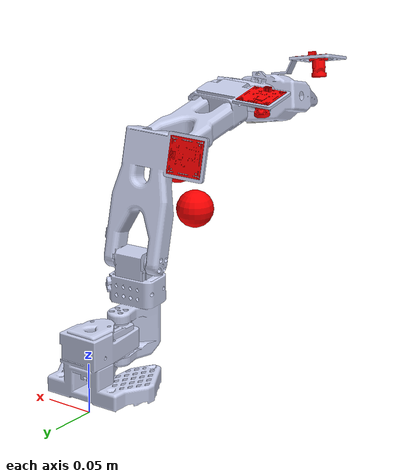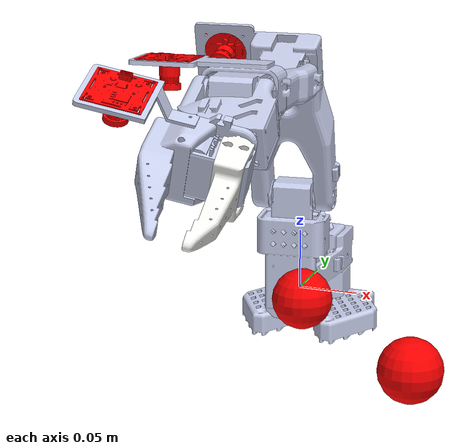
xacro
<?xml version="1.0" encoding="utf-8"?>

<robot xmlns:xacro="http://www.ros.org/wiki/xacro" name="digital_twin">

  <xacro:include filename="$(find digital_twin)/urdf/ros_control.urdf.xacro" />
  <xacro:property name="focal_length" value="1.047" />

  <link name="world"/>

  <xacro:include filename="$(find digital_twin)/urdf/random_sphere_1.urdf.xacro" />

  <link name="base_link">
    <inertial>
      <origin
        xyz="0.0289665748459923 -0.0563386381862514 0.0257898952415849"
        rpy="0 0 0" />
      <mass
        value="0.182638453025953" />
      <inertia
        ixx="0.000138502730797721"
        ixy="5.13155858445536E-07"
        ixz="-2.43327941158306E-09"
        iyy="0.000149708916054179"
        iyz="-2.12768663741834E-05"
        izz="0.00017574420518952" />
    </inertial>
    <visual>
      <origin
        xyz="0 0 0"
        rpy="0 0 0" />
      <geometry>
        <mesh
          filename="package://digital_twin/meshes_2/base.STL" />
      </geometry>
      <material
        name="">
        <color
          rgba="0.792156862745098 0.819607843137255 0.933333333333333 1" />
      </material>
    </visual>
    <collision>
      <origin
        xyz="0 0 0"
        rpy="0 0 0" />
      <geometry>
        <mesh
          filename="package://digital_twin/meshes_2/base.STL" />
      </geometry>
    </collision>
  </link>
  <link
    name="rotator">
    <inertial>
      <origin
        xyz="0.030196 0.05726 -0.0076233"
        rpy="0 0 0" />
      <mass
        value="0.11834" />
      <inertia
        ixx="5.8117E-05"
        ixy="-4.4778E-06"
        ixz="5.0777E-07"
        iyy="3.2325E-05"
        iyz="7.7073E-07"
        izz="5.9598E-05" />
    </inertial>
    <visual>
      <origin
        xyz="0 0 0"
        rpy="0 0 0" />
      <geometry>
        <mesh
          filename="package://digital_twin/meshes_2/rotator.STL" />
      </geometry>
      <material
        name="">
        <color
          rgba="0.79216 0.81961 0.93333 1" />
      </material>
    </visual>
    <collision>
      <origin
        xyz="0 0 0"
        rpy="0 0 0" />
      <geometry>
        <mesh
          filename="package://digital_twin/meshes_2/rotator.STL" />
      </geometry>
    </collision>
  </link>
  <joint
    name="joint_0"
    type="revolute">
    <origin
      xyz="0.029071 -0.083383 0.015488"
      rpy="1.5708 0 -1.7156" />
    <parent
      link="base_link" />
    <child
      link="rotator" />
    <axis
      xyz="0 1 0" />
    <limit
      lower="-2.243"
      upper="1.827"
      effort="10"
      velocity="10" />
    <dynamics damping="5.0" friction="1.0"/>
  </joint>
  <link
    name="under_arm">
    <inertial>
      <origin
        xyz="0.0725714453367885 -0.00247226941528854 -0.01757972470484"
        rpy="0 0 0" />
      <mass
        value="0.161381394011792" />
      <inertia
        ixx="7.02120145779093E-05"
        ixy="-1.95289891929553E-06"
        ixz="1.99351680099217E-05"
        iyy="0.000195698407340443"
        iyz="5.94149495075594E-07"
        izz="0.000148087906093691" />
    </inertial>
    <visual>
      <origin
        xyz="0 0 0"
        rpy="0 0 0" />
      <geometry>
        <mesh
          filename="package://digital_twin/meshes_2/under_arm.STL" />
      </geometry>
      <material
        name="">
        <color
          rgba="0.792156862745098 0.819607843137255 0.933333333333333 1" />
      </material>
    </visual>
    <collision>
      <origin
        xyz="0 0 0"
        rpy="0 0 0" />
      <geometry>
        <mesh
          filename="package://digital_twin/meshes_2/under_arm.STL" />
      </geometry>
    </collision>
  </link>
  <joint
    name="joint_1"
    type="revolute">
    <origin
      xyz="0.029629 0.10044 -0.007646"
      rpy="0.24808 -0.18094 1.258" />
    <parent
      link="rotator" />
    <child
      link="under_arm" />
    <axis
      xyz="0.24987 0 0.96828" />
    <limit
      lower="-1.418"
      upper="2.08"
      effort="10"
      velocity="10" />
    <dynamics damping="5.0" friction="1.0"/>
  </joint>
  <link
    name="camera_1">
    <inertial>
      <origin
        xyz="-0.014807 2.7562E-05 -0.00029683"
        rpy="0 0 0" />
      <mass
        value="5.4945E-06" />
      <inertia
        ixx="5.7915E-10"
        ixy="1.3338E-13"
        ixz="2.1746E-13"
        iyy="3.3324E-10"
        iyz="-8.499E-13"
        izz="3.3686E-10" />
    </inertial>
    <visual>
      <origin
        xyz="0 0 0"
        rpy="0 0 0" />
      <geometry>
        <mesh
          filename="package://digital_twin/meshes_2/camera_1.STL" />
      </geometry>
      <material
        name="">
        <color
          rgba="1 0 0 1" />
      </material>
    </visual>
    <collision>
      <origin
        xyz="0 0 0"
        rpy="0 0 0" />
      <geometry>
        <mesh
          filename="package://digital_twin/meshes_2/camera_1.STL" />
      </geometry>
    </collision>
  </link>
  <joint
    name="fixed_camera_1"
    type="fixed">
    <origin
      xyz="0.12006 -0.0058453 0.020345"
      rpy="-0.25255 0 -1.5708" />
    <parent
      link="under_arm" />
    <child
      link="camera_1" />
    <axis
      xyz="0 0 0" />
  </joint>
  <link
    name="upper_arm">
    <inertial>
      <origin
        xyz="0.076621 0.0021483 -0.018362"
        rpy="0 0 0" />
      <mass
        value="0.14968" />
      <inertia
        ixx="5.765E-05"
        ixy="1.6107E-06"
        ixz="1.2433E-05"
        iyy="0.00013933"
        iyz="-4.0154E-07"
        izz="9.8735E-05" />
    </inertial>
    <visual>
      <origin
        xyz="0 0 0"
        rpy="0 0 0" />
      <geometry>
        <mesh
          filename="package://digital_twin/meshes_2/upper_arm.STL" />
      </geometry>
      <material
        name="">
        <color
          rgba="0.79216 0.81961 0.93333 1" />
      </material>
    </visual>
    <collision>
      <origin
        xyz="0 0 0"
        rpy="0 0 0" />
      <geometry>
        <mesh
          filename="package://digital_twin/meshes_2/upper_arm.STL" />
      </geometry>
    </collision>
  </link>
  <joint
    name="joint_2"
    type="revolute">
    <origin
      xyz="0.109 -0.028 -0.028128"
      rpy="-0.2406 -0.16097 -1.1768" />
    <parent
      link="under_arm" />
    <child
      link="upper_arm" />
    <axis
      xyz="0.24987 0 0.96828" />
    <limit
      lower="-1.927"
      upper="1.147"
      effort="10"
      velocity="10" />
    <dynamics damping="5.0" friction="1.0"/>
  </joint>
  <link
    name="camera_2">
    <inertial>
      <origin
        xyz="-0.014807 0.00029683 2.7563E-05"
        rpy="0 0 0" />
      <mass
        value="5.4945E-06" />
      <inertia
        ixx="5.7915E-10"
        ixy="-2.1746E-13"
        ixz="1.3339E-13"
        iyy="3.3686E-10"
        iyz="8.499E-13"
        izz="3.3324E-10" />
    </inertial>
    <visual>
      <origin
        xyz="0 0 0"
        rpy="0 0 0" />
      <geometry>
        <mesh
          filename="package://digital_twin/meshes_2/camera_2.STL" />
      </geometry>
      <material
        name="">
        <color
          rgba="1 0 0 1" />
      </material>
    </visual>
    <collision>
      <origin
        xyz="0 0 0"
        rpy="0 0 0" />
      <geometry>
        <mesh
          filename="package://digital_twin/meshes_2/camera_2.STL" />
      </geometry>
    </collision>
  </link>
  <joint
    name="fixed_camera_2"
    type="fixed">
    <origin
      xyz="0.11427 0.0027547 0.023802"
      rpy="-0.25255 0 -1.5708" />
    <parent
      link="upper_arm" />
    <child
      link="camera_2" />
    <axis
      xyz="0 0 0" />
  </joint>
  <link
    name="EE_rotator">
    <inertial>
      <origin
        xyz="0.032137 -0.0028891 -0.016038"
        rpy="0 0 0" />
      <mass
        value="0.068528" />
      <inertia
        ixx="2.4982E-05"
        ixy="6.4371E-07"
        ixz="3.1762E-07"
        iyy="3.3722E-05"
        iyz="-3.1393E-07"
        izz="1.8312E-05" />
    </inertial>
    <visual>
      <origin
        xyz="0 0 0"
        rpy="0 0 0" />
      <geometry>
        <mesh
          filename="package://digital_twin/meshes_2/EE_rotator.STL" />
      </geometry>
      <material
        name="">
        <color
          rgba="0.79216 0.81961 0.93333 1" />
      </material>
    </visual>
    <collision>
      <origin
        xyz="0 0 0"
        rpy="0 0 0" />
      <geometry>
        <mesh
          filename="package://digital_twin/meshes_2/EE_rotator.STL" />
      </geometry>
    </collision>
  </link>
  <joint
    name="joint_3"
    type="revolute">
    <origin
      xyz="0.13062 0.0052 -0.033708"
      rpy="-0.077908 -0.012035 -0.30637" />
    <parent
      link="upper_arm" />
    <child
      link="EE_rotator" />
    <axis
      xyz="0.24987 0 0.96828" />
    <limit
      lower="-1.168"
      upper="2"
      effort="10"
      velocity="10" />
    <dynamics damping="5.0" friction="1.0"/>
  </joint>
  <link
    name="EE">
    <inertial>
      <origin
        xyz="0.046674 -0.0032136 0.040821"
        rpy="0 0 0" />
      <mass
        value="0.096482" />
      <inertia
        ixx="4.1163E-05"
        ixy="1.244E-06"
        ixz="-8.1312E-06"
        iyy="5.0998E-05"
        iyz="-7.485E-07"
        izz="3.2241E-05" />
    </inertial>
    <visual>
      <origin
        xyz="0 0 0"
        rpy="0 0 0" />
      <geometry>
        <mesh
          filename="package://digital_twin/meshes_2/EE.STL" />
      </geometry>
      <material
        name="">
        <color
          rgba="0.79216 0.81961 0.93333 1" />
      </material>
    </visual>
    <collision>
      <origin
        xyz="0 0 0"
        rpy="0 0 0" />
      <geometry>
        <mesh
          filename="package://digital_twin/meshes_2/EE.STL" />
      </geometry>
    </collision>
  </link>
  <joint
    name="joint_4"
    type="revolute">
    <origin
      xyz="0.025128 -0.0022682 -0.0063813"
      rpy="-0.12297 0.85988 -0.072346" />
    <parent
      link="EE_rotator" />
    <child
      link="EE" />
    <axis
      xyz="0.82051 -0.087161 0.56495" />
    <limit
      lower="-2.0"
      upper="2.4"
      effort="10"
      velocity="10" />
    <dynamics damping="5.0" friction="1.0"/>
  </joint>
  <link
    name="camera_3">
    <inertial>
      <origin
        xyz="-0.014807 -0.00029684 -2.7564E-05"
        rpy="0 0 0" />
      <mass
        value="5.4945E-06" />
      <inertia
        ixx="5.7915E-10"
        ixy="2.1744E-13"
        ixz="-1.3339E-13"
        iyy="3.3686E-10"
        iyz="8.4993E-13"
        izz="3.3324E-10" />
    </inertial>
    <visual>
      <origin
        xyz="0 0 0"
        rpy="0 0 0" />
      <geometry>
        <mesh
          filename="package://digital_twin/meshes_2/camera_3.STL" />
      </geometry>
      <material
        name="">
        <color
          rgba="1 0 0 1" />
      </material>
    </visual>
    <collision>
      <origin
        xyz="0 0 0"
        rpy="0 0 0" />
      <geometry>
        <mesh
          filename="package://digital_twin/meshes_2/camera_3.STL" />
      </geometry>
    </collision>
  </link>
  <joint
    name="fixed_camera_3"
    type="fixed">
    <origin
      xyz="0.022265 0.021474 0.078641"
      rpy="0.60199 -0.068773 -1.7238" />
    <parent
      link="EE" />
    <child
      link="camera_3" />
    <axis
      xyz="0 0 0" />
  </joint>
  <link
    name="moving_leg">
    <inertial>
      <origin
        xyz="-0.0015742 -0.030012 0.00047621"
        rpy="0 0 0" />
      <mass
        value="0.020687" />
      <inertia
        ixx="1.1396E-05"
        ixy="-5.5103E-07"
        ixz="-1.0164E-08"
        iyy="3.2597E-06"
        iyz="-1.8887E-07"
        izz="9.1077E-06" />
    </inertial>
    <visual>
      <origin
        xyz="0 0 0"
        rpy="0 0 0" />
      <geometry>
        <mesh
          filename="package://digital_twin/meshes_2/moving_leg.STL" />
      </geometry>
      <material
        name="">
        <color
          rgba="0.96471 0.96471 0.95294 1" />
      </material>
    </visual>
    <collision>
      <origin
        xyz="0 0 0"
        rpy="0 0 0" />
      <geometry>
        <mesh
          filename="package://digital_twin/meshes_2/moving_leg.STL" />
      </geometry>
    </collision>
  </link>
  <joint
    name="joint_5"
    type="revolute">
    <origin
      xyz="0.05911 -0.007971 0.016426"
      rpy="-1.696 0.98819 -0.25774" />
    <parent
      link="EE" />
    <child
      link="moving_leg" />
    <axis
      xyz="0 0 1" />
    <limit
      lower="-0.178"
      upper="1.555"
      effort="10"
      velocity="10" />
    <dynamics damping="5.0" friction="1.0"/>
  </joint>

  <joint name="world_joint" type="fixed">
    <parent link="world"/>
    <child link="base_link"/>
    <origin xyz="0 0 0" rpy="0 0 0"/>
  </joint>

  <link name="camera_1_optical"/>
  <link name="camera_2_optical"/>
  <link name="camera_3_optical"/>

  <joint name="optics1" type="fixed">
  <parent link="camera_1"/>
  <child link="camera_1_optical"/>
  <origin xyz="0 0 0" rpy="0 0 0" />
</joint>

<joint name="optics2" type="fixed">
  <parent link="camera_2"/>
  <child link="camera_2_optical"/>
  <origin xyz="0 0 0" rpy="0 0 0" />
</joint>

<joint name="optics3" type="fixed">
  <parent link="camera_3"/>
  <child link="camera_3_optical"/>
  <origin xyz="0 0 0" rpy="0 0 0" />
</joint>

  <gazebo>
    <plugin filename="gz-sim-sensors-system" name="gz::sim::systems::Sensors">
      <render_engine>ogre2</render_engine>
    </plugin>
  </gazebo>

  <gazebo reference="camera_1">
    <sensor name="cube_camera" type="camera">
      <update_rate>10</update_rate>
      <pose>0 0 0 0 0 0</pose> <!-- Front facing, near top edge -->
      <always_on>true</always_on>
      <visualize>true</visualize>
      <topic>/camera1/image_raw</topic>
      <camera_info_topic>camera1/camera_info</camera_info_topic>
      <camera name="main_cam">
        <horizontal_fov>${focal_length}</horizontal_fov>
        <image>
          <width>640</width>
          <height>480</height>
          <format>R8G8B8</format>
        </image>
        <clip>
          <near>0.01</near>
          <far>100.0</far>
        </clip>
      </camera>
    </sensor>
  </gazebo>

  <gazebo reference="camera_2">
    <sensor name="cube_camera_two" type="camera">
      <update_rate>10</update_rate>
      <pose>0 0 0 0 0 0</pose> <!-- Front facing, near top edge -->
      <always_on>true</always_on>
      <visualize>true</visualize>
      <topic>/camera2/image_raw</topic>
      <camera_info_topic>camera2/camera_info</camera_info_topic>
      <camera name="main_cam_two">
        <horizontal_fov>${focal_length}</horizontal_fov>
        <image>
          <width>640</width>
          <height>480</height>
          <format>R8G8B8</format>
        </image>
        <clip>
          <near>0.01</near>
          <far>100.0</far>
        </clip>
      </camera>
    </sensor>
  </gazebo>

  <gazebo reference="camera_3">
    <sensor name="cube_camera_three" type="camera">
      <update_rate>10</update_rate>
      <pose>0 0 0 0 0 0</pose> <!-- Front facing, near top edge -->
      <always_on>true</always_on>
      <visualize>true</visualize>
      <topic>/camera3/image_raw</topic>
      <camera_info_topic>camera3/camera_info</camera_info_topic>
      <camera name="main_cam_three">
        <horizontal_fov>${focal_length}</horizontal_fov>
        <image>
          <width>640</width>
          <height>480</height>
          <format>R8G8B8</format>
        </image>
        <clip>
          <near>0.01</near>
          <far>100.0</far>
        </clip>
      </camera>
    </sensor>
  </gazebo>

  <gazebo>
    <plugin filename="gz_ros2_control-system" name="gz_ros2_control::GazeboSimROS2ControlPlugin">
      <parameters>$(find digital_twin)/config/ros2_config.yaml</parameters>
      <ros>
        <remapping>/controller_manager/robot_description:=/robot_description</remapping>
      </ros>
    </plugin>
  </gazebo>

</robot>

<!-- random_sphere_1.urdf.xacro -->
<robot xmlns:xacro="http://www.ros.org/wiki/xacro" name="digital_twin">

  <xacro:property name="red_2_sphere_x" value="${0.1}"/>
  <xacro:property name="red_2_sphere_y" value="${-0.3}"/>
  <xacro:property name="red_2_sphere_z" value="${0.1}"/>

  <xacro:property name="red_sphere_x" value="${0.2}"/>
  <xacro:property name="red_sphere_y" value="${-0.4}"/>
  <xacro:property name="red_sphere_z" value="${0.1}"/>

  <xacro:property name="orbit_radius" value="${sqrt(red_sphere_x*red_sphere_x + red_sphere_z*red_sphere_z)}"/>

  <link name="red_sphere">
    <inertial>
      <mass value="0.0001"/>
      <inertia ixx="0.0001" ixy="0" ixz="0" iyy="0.0001" iyz="0" izz="0.0001"/>
    </inertial>
    <visual>
      <geometry>
        <sphere radius="0.02"/>
      </geometry>
      <material name="red">
        <color rgba="1 0 0 1"/>
      </material>
    </visual>
    <collision>
      <geometry>
        <sphere radius="0.09"/>
      </geometry>
    </collision>
  </link>

   <joint name="joint_name" type="fixed">
    <parent link="world"/>
    <child link="red_sphere"/>
    <origin xyz="${red_sphere_x} ${red_sphere_y} ${red_sphere_z}" rpy="0 0 0"/>
   </joint>

     <link name="red_sphere_2">
    <inertial>
      <mass value="0.0001"/>
      <inertia ixx="0.0001" ixy="0" ixz="0" iyy="0.0001" iyz="0" izz="0.0001"/>
    </inertial>
    <visual>
      <geometry>
        <sphere radius="0.02"/>
      </geometry>
      <material name="red">
        <color rgba="1 0 0 1"/>
      </material>
    </visual>
    <collision>
      <geometry>
        <sphere radius="0.09"/>
      </geometry>
    </collision>
  </link>

   <joint name="joint_name_2" type="fixed">
    <parent link="world"/>
    <child link="red_sphere_2"/>
    <origin xyz="${red_2_sphere_x} ${red_2_sphere_y} ${red_2_sphere_z}" rpy="0 0 0"/>
   </joint>
</robot>
